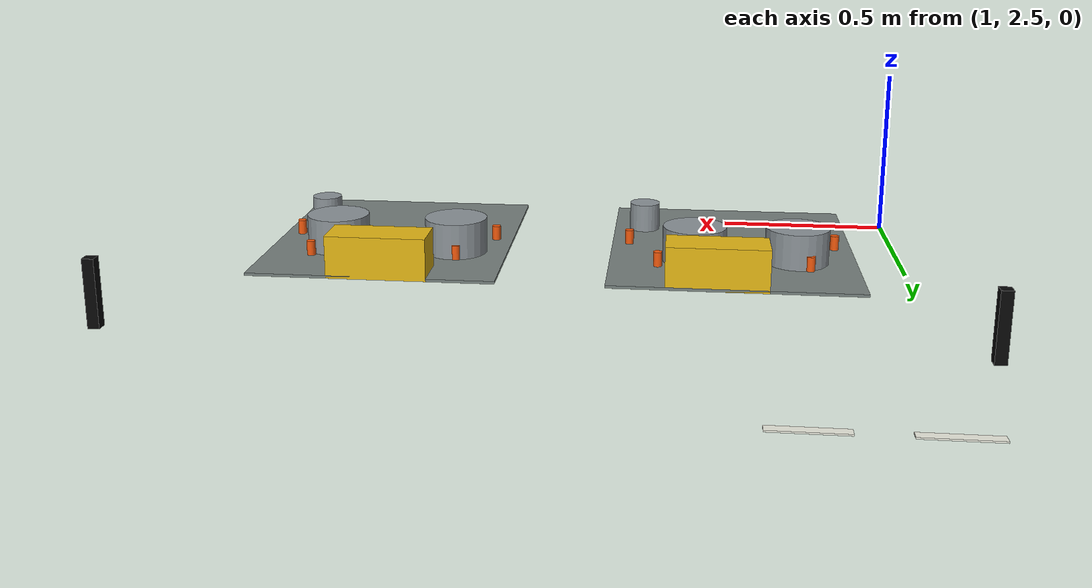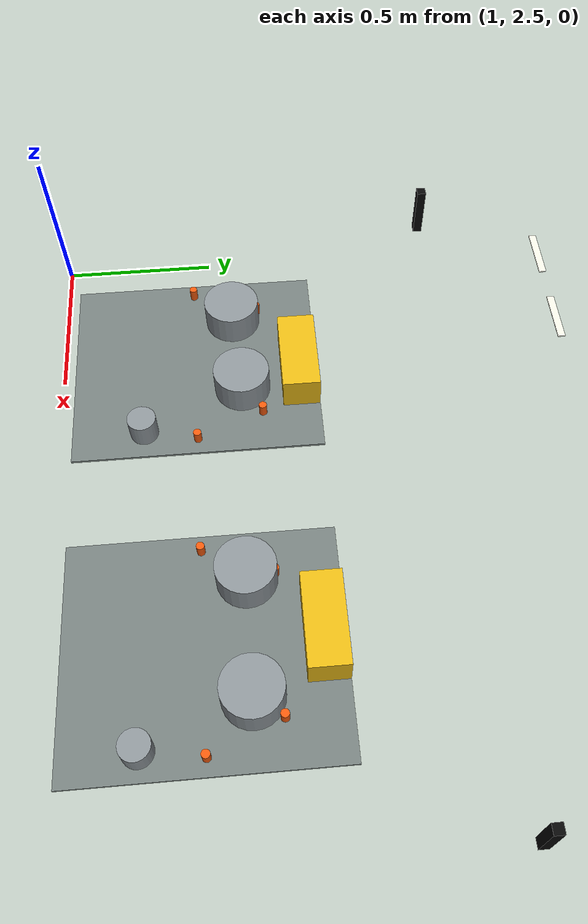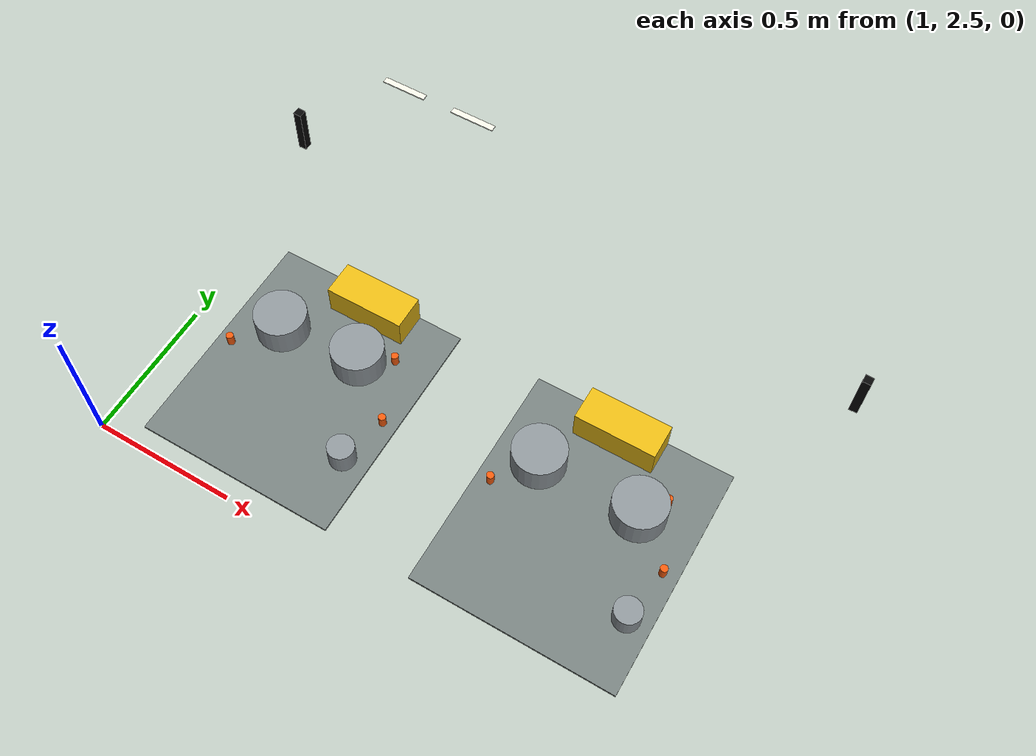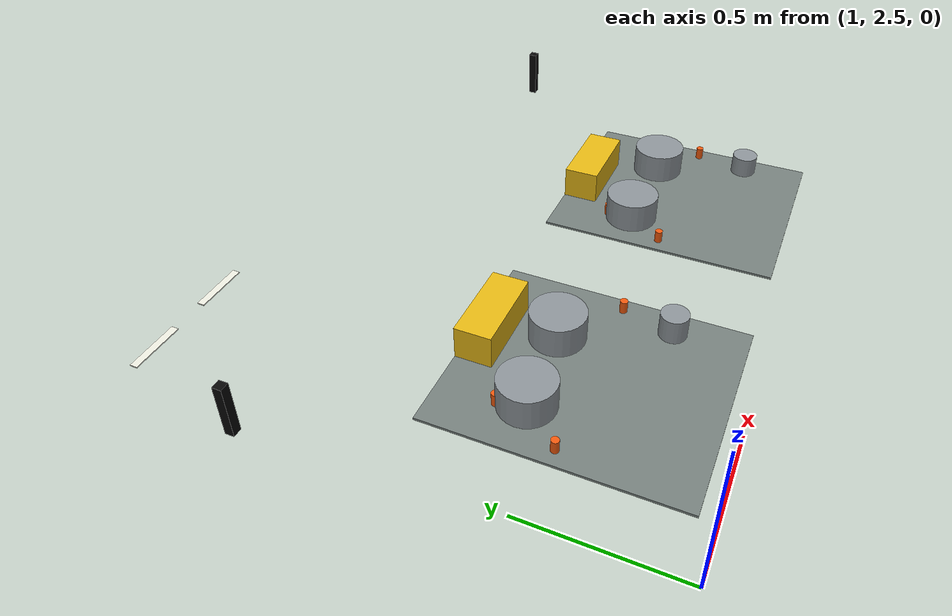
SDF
<sdf version="1.7">
 <world name="sandbox">
  <model name="LM-RING-N-02">
   <static>true</static>
   <pose>1.09 4.2 0.05450000000000001 0 0 0</pose>
   <link name="link">
    <collision name="collision"><geometry><box><size>0.18 0.025 0.004</size></box></geometry></collision>
    <visual name="visual">
     <geometry><box><size>0.18 0.025 0.004</size></box></geometry>
     <material><ambient>0.93 0.93 0.88 1</ambient><diffuse>0.93 0.93 0.88 1</diffuse></material>
    </visual>
   </link>
  </model>
  <model name="LM-RING-N-03">
   <static>true</static>
   <pose>1.3900000000000001 4.2 0.05450000000000001 0 0 0</pose>
   <link name="link">
    <collision name="collision"><geometry><box><size>0.18 0.025 0.004</size></box></geometry></collision>
    <visual name="visual">
     <geometry><box><size>0.18 0.025 0.004</size></box></geometry>
     <material><ambient>0.93 0.93 0.88 1</ambient><diffuse>0.93 0.93 0.88 1</diffuse></material>
    </visual>
   </link>
  </model>
  <model name="IND-NW-PAD">
   <static>true</static>
   <pose>1.5 2.95 0.054000000000000006 0 0 0</pose>
   <link name="link">
    <collision name="collision">
     <geometry><box><size>0.7000000000000001 0.8 0.008</size></box></geometry>
    </collision>
    <visual name="visual">
     <geometry><box><size>0.7000000000000001 0.8 0.008</size></box></geometry>
     <material><ambient>0.46 0.5 0.49 1</ambient><diffuse>0.46 0.5 0.49 1</diffuse></material>
    </visual>
   </link>
  </model>
  <model name="IND-NE-PAD">
   <static>true</static>
   <pose>2.5 2.95 0.054000000000000006 0 0 0</pose>
   <link name="link">
    <collision name="collision">
     <geometry><box><size>0.7000000000000001 0.8 0.008</size></box></geometry>
    </collision>
    <visual name="visual">
     <geometry><box><size>0.7000000000000001 0.8 0.008</size></box></geometry>
     <material><ambient>0.46 0.5 0.49 1</ambient><diffuse>0.46 0.5 0.49 1</diffuse></material>
    </visual>
   </link>
  </model>
  <model name="NW-T01">
   <static>true</static>
   <pose>1.32 3.08 0.10500000000000001 0 0 0</pose>
   <link name="link">
    <collision name="collision">
     <geometry><cylinder><radius>0.09</radius><length>0.11</length></cylinder></geometry>
    </collision>
    <visual name="visual">
     <geometry><cylinder><radius>0.09</radius><length>0.11</length></cylinder></geometry>
     <material><ambient>0.55 0.58 0.6 1</ambient><diffuse>0.55 0.58 0.6 1</diffuse></material>
    </visual>
   </link>
  </model>
  <model name="NW-T02">
   <static>true</static>
   <pose>1.61 3.1 0.10500000000000001 0 0 0</pose>
   <link name="link">
    <collision name="collision">
     <geometry><cylinder><radius>0.09</radius><length>0.11</length></cylinder></geometry>
    </collision>
    <visual name="visual">
     <geometry><cylinder><radius>0.09</radius><length>0.11</length></cylinder></geometry>
     <material><ambient>0.55 0.58 0.6 1</ambient><diffuse>0.55 0.58 0.6 1</diffuse></material>
    </visual>
   </link>
  </model>
  <model name="NW-T03">
   <static>true</static>
   <pose>1.76 2.7800000000000002 0.095 0 0 0</pose>
   <link name="link">
    <collision name="collision">
     <geometry><cylinder><radius>0.045</radius><length>0.09</length></cylinder></geometry>
    </collision>
    <visual name="visual">
     <geometry><cylinder><radius>0.045</radius><length>0.09</length></cylinder></geometry>
     <material><ambient>0.55 0.58 0.6 1</ambient><diffuse>0.55 0.58 0.6 1</diffuse></material>
    </visual>
   </link>
  </model>
  <model name="NW-B01">
   <static>true</static>
   <pose>1.55 3.29 0.11 0 0 0</pose>
   <link name="link">
    <collision name="collision"><geometry><box><size>0.28 0.12 0.12</size></box></geometry></collision>
    <visual name="visual">
     <geometry><box><size>0.28 0.12 0.12</size></box></geometry>
     <material><ambient>0.9 0.72 0.08 1</ambient><diffuse>0.9 0.72 0.08 1</diffuse></material>
    </visual>
   </link>
  </model>
  <model name="NE-T01">
   <static>true</static>
   <pose>2.3000000000000003 3.08 0.10500000000000001 0 0 0</pose>
   <link name="link">
    <collision name="collision">
     <geometry><cylinder><radius>0.09</radius><length>0.11</length></cylinder></geometry>
    </collision>
    <visual name="visual">
     <geometry><cylinder><radius>0.09</radius><length>0.11</length></cylinder></geometry>
     <material><ambient>0.55 0.58 0.6 1</ambient><diffuse>0.55 0.58 0.6 1</diffuse></material>
    </visual>
   </link>
  </model>
  <model name="NE-T02">
   <static>true</static>
   <pose>2.65 3.08 0.10500000000000001 0 0 0</pose>
   <link name="link">
    <collision name="collision">
     <geometry><cylinder><radius>0.09</radius><length>0.11</length></cylinder></geometry>
    </collision>
    <visual name="visual">
     <geometry><cylinder><radius>0.09</radius><length>0.11</length></cylinder></geometry>
     <material><ambient>0.55 0.58 0.6 1</ambient><diffuse>0.55 0.58 0.6 1</diffuse></material>
    </visual>
   </link>
  </model>
  <model name="NE-T03">
   <static>true</static>
   <pose>2.77 2.77 0.09 0 0 0</pose>
   <link name="link">
    <collision name="collision">
     <geometry><cylinder><radius>0.045</radius><length>0.08</length></cylinder></geometry>
    </collision>
    <visual name="visual">
     <geometry><cylinder><radius>0.045</radius><length>0.08</length></cylinder></geometry>
     <material><ambient>0.55 0.58 0.6 1</ambient><diffuse>0.55 0.58 0.6 1</diffuse></material>
    </visual>
   </link>
  </model>
  <model name="NE-B01">
   <static>true</static>
   <pose>2.48 3.29 0.11 0 0 0</pose>
   <link name="link">
    <collision name="collision"><geometry><box><size>0.28 0.12 0.12</size></box></geometry></collision>
    <visual name="visual">
     <geometry><box><size>0.28 0.12 0.12</size></box></geometry>
     <material><ambient>0.9 0.72 0.08 1</ambient><diffuse>0.9 0.72 0.08 1</diffuse></material>
    </visual>
   </link>
  </model>
  <model name="TL-NW-2">
   <static>true</static>
   <pose>0.92 3.7800000000000002 0.14 0 0 0</pose>
   <link name="link">
    <collision name="collision"><geometry><box><size>0.03 0.03 0.18</size></box></geometry></collision>
    <visual name="visual">
     <geometry><box><size>0.03 0.03 0.18</size></box></geometry>
     <material><ambient>0.03 0.03 0.03 1</ambient><diffuse>0.03 0.03 0.03 1</diffuse></material>
    </visual>
   </link>
  </model>
  <model name="TL-NE-1">
   <static>true</static>
   <pose>3.08 3.7800000000000002 0.14 0 0 0</pose>
   <link name="link">
    <collision name="collision"><geometry><box><size>0.03 0.03 0.18</size></box></geometry></collision>
    <visual name="visual">
     <geometry><box><size>0.03 0.03 0.18</size></box></geometry>
     <material><ambient>0.03 0.03 0.03 1</ambient><diffuse>0.03 0.03 0.03 1</diffuse></material>
    </visual>
   </link>
  </model>
  <model name="NW-C-01">
   <static>true</static>
   <pose>1.8 2.95 0.07500000000000001 0 0 0</pose>
   <link name="link">
    <collision name="collision">
     <geometry><cylinder><radius>0.0125</radius><length>0.05</length></cylinder></geometry>
    </collision>
    <visual name="visual">
     <geometry><cylinder><radius>0.0125</radius><length>0.05</length></cylinder></geometry>
     <material><ambient>0.95 0.35 0.05 1</ambient><diffuse>0.95 0.35 0.05 1</diffuse></material>
    </visual>
   </link>
  </model>
  <model name="NW-C-02">
   <static>true</static>
   <pose>1.7121320343559643 3.1621320343559645 0.07500000000000001 0 0 0</pose>
   <link name="link">
    <collision name="collision">
     <geometry><cylinder><radius>0.0125</radius><length>0.05</length></cylinder></geometry>
    </collision>
    <visual name="visual">
     <geometry><cylinder><radius>0.0125</radius><length>0.05</length></cylinder></geometry>
     <material><ambient>0.95 0.35 0.05 1</ambient><diffuse>0.95 0.35 0.05 1</diffuse></material>
    </visual>
   </link>
  </model>
  <model name="NW-C-03">
   <static>true</static>
   <pose>1.5 3.25 0.07500000000000001 0 0 0</pose>
   <link name="link">
    <collision name="collision">
     <geometry><cylinder><radius>0.0125</radius><length>0.05</length></cylinder></geometry>
    </collision>
    <visual name="visual">
     <geometry><cylinder><radius>0.0125</radius><length>0.05</length></cylinder></geometry>
     <material><ambient>0.95 0.35 0.05 1</ambient><diffuse>0.95 0.35 0.05 1</diffuse></material>
    </visual>
   </link>
  </model>
  <model name="NW-C-04">
   <static>true</static>
   <pose>1.2878679656440357 3.1621320343559645 0.07500000000000001 0 0 0</pose>
   <link name="link">
    <collision name="collision">
     <geometry><cylinder><radius>0.0125</radius><length>0.05</length></cylinder></geometry>
    </collision>
    <visual name="visual">
     <geometry><cylinder><radius>0.0125</radius><length>0.05</length></cylinder></geometry>
     <material><ambient>0.95 0.35 0.05 1</ambient><diffuse>0.95 0.35 0.05 1</diffuse></material>
    </visual>
   </link>
  </model>
  <model name="NW-C-05">
   <static>true</static>
   <pose>1.2 2.95 0.07500000000000001 0 0 0</pose>
   <link name="link">
    <collision name="collision">
     <geometry><cylinder><radius>0.0125</radius><length>0.05</length></cylinder></geometry>
    </collision>
    <visual name="visual">
     <geometry><cylinder><radius>0.0125</radius><length>0.05</length></cylinder></geometry>
     <material><ambient>0.95 0.35 0.05 1</ambient><diffuse>0.95 0.35 0.05 1</diffuse></material>
    </visual>
   </link>
  </model>
  <model name="NE-C-01">
   <static>true</static>
   <pose>2.8 2.95 0.07500000000000001 0 0 0</pose>
   <link name="link">
    <collision name="collision">
     <geometry><cylinder><radius>0.0125</radius><length>0.05</length></cylinder></geometry>
    </collision>
    <visual name="visual">
     <geometry><cylinder><radius>0.0125</radius><length>0.05</length></cylinder></geometry>
     <material><ambient>0.95 0.35 0.05 1</ambient><diffuse>0.95 0.35 0.05 1</diffuse></material>
    </visual>
   </link>
  </model>
  <model name="NE-C-02">
   <static>true</static>
   <pose>2.7121320343559643 3.1621320343559645 0.07500000000000001 0 0 0</pose>
   <link name="link">
    <collision name="collision">
     <geometry><cylinder><radius>0.0125</radius><length>0.05</length></cylinder></geometry>
    </collision>
    <visual name="visual">
     <geometry><cylinder><radius>0.0125</radius><length>0.05</length></cylinder></geometry>
     <material><ambient>0.95 0.35 0.05 1</ambient><diffuse>0.95 0.35 0.05 1</diffuse></material>
    </visual>
   </link>
  </model>
  <model name="NE-C-03">
   <static>true</static>
   <pose>2.5 3.25 0.07500000000000001 0 0 0</pose>
   <link name="link">
    <collision name="collision">
     <geometry><cylinder><radius>0.0125</radius><length>0.05</length></cylinder></geometry>
    </collision>
    <visual name="visual">
     <geometry><cylinder><radius>0.0125</radius><length>0.05</length></cylinder></geometry>
     <material><ambient>0.95 0.35 0.05 1</ambient><diffuse>0.95 0.35 0.05 1</diffuse></material>
    </visual>
   </link>
  </model>
  <model name="NE-C-04">
   <static>true</static>
   <pose>2.2878679656440357 3.1621320343559645 0.07500000000000001 0 0 0</pose>
   <link name="link">
    <collision name="collision">
     <geometry><cylinder><radius>0.0125</radius><length>0.05</length></cylinder></geometry>
    </collision>
    <visual name="visual">
     <geometry><cylinder><radius>0.0125</radius><length>0.05</length></cylinder></geometry>
     <material><ambient>0.95 0.35 0.05 1</ambient><diffuse>0.95 0.35 0.05 1</diffuse></material>
    </visual>
   </link>
  </model>
  <model name="NE-C-05">
   <static>true</static>
   <pose>2.2 2.95 0.07500000000000001 0 0 0</pose>
   <link name="link">
    <collision name="collision">
     <geometry><cylinder><radius>0.0125</radius><length>0.05</length></cylinder></geometry>
    </collision>
    <visual name="visual">
     <geometry><cylinder><radius>0.0125</radius><length>0.05</length></cylinder></geometry>
     <material><ambient>0.95 0.35 0.05 1</ambient><diffuse>0.95 0.35 0.05 1</diffuse></material>
    </visual>
   </link>
  </model>
 </world>
</sdf>
